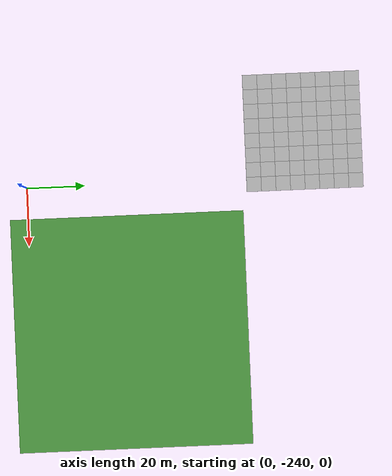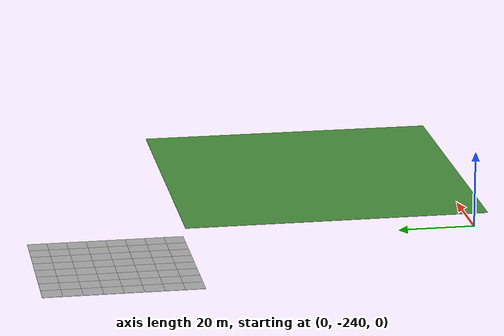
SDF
<sdf version="1.7">
 <world name="default">
  <model name="grass_plane_80x80_13">
   <pose>50.7386 -206.165 -0.05 0 -0 0</pose>
   <static>1</static>
   <link name="link">
    <collision name="collision"><geometry><box><size>80 80 0.1</size></box></geometry></collision>
    <visual name="grass">
     <cast_shadows>0</cast_shadows>
     <geometry><box><size>80 80 0.1</size></box></geometry>
     <material>
      <script><uri>file://media/materials/scripts/gazebo.material</uri><name>Gazebo/Grass</name></script>
     </material>
    </visual>
   </link>
  </model>
  <model name="mud_plane_40x40_9">
   <model name="mud_plane_20x20">
    <model name="mud_plane">
     <static>1</static>
     <link name="link">
      <collision name="collision"><geometry><box><size>10 10 0.1</size></box></geometry></collision>
      <visual name="visual_1">
       <pose>-2.5 2.5 -0.05 0 -0 0</pose>
       <cast_shadows>0</cast_shadows>
       <geometry><box><size>5 5 0.1</size></box></geometry>
       <material>
        <script>
         <uri>model://mud_plane/materials/scripts</uri>
         <uri>model://mud_plane/materials/textures</uri>
         <name>vrc/mud</name>
        </script>
       </material>
      </visual>
      <visual name="visual_2">
       <pose>2.5 2.5 -0.05 0 -0 0</pose>
       <cast_shadows>0</cast_shadows>
       <geometry><box><size>5 5 0.1</size></box></geometry>
       <material>
        <script>
         <uri>model://mud_plane/materials/scripts</uri>
         <uri>model://mud_plane/materials/textures</uri>
         <name>vrc/mud</name>
        </script>
       </material>
      </visual>
      <visual name="visual_3">
       <pose>2.5 -2.5 -0.05 0 -0 0</pose>
       <cast_shadows>0</cast_shadows>
       <geometry><box><size>5 5 0.1</size></box></geometry>
       <material>
        <script>
         <uri>model://mud_plane/materials/scripts</uri>
         <uri>model://mud_plane/materials/textures</uri>
         <name>vrc/mud</name>
        </script>
       </material>
      </visual>
      <visual name="visual_4">
       <pose>-2.5 -2.5 -0.05 0 -0 0</pose>
       <cast_shadows>0</cast_shadows>
       <geometry><box><size>5 5 0.1</size></box></geometry>
       <material>
        <script>
         <uri>model://mud_plane/materials/scripts</uri>
         <uri>model://mud_plane/materials/textures</uri>
         <name>vrc/mud</name>
        </script>
       </material>
      </visual>
     </link>
     <pose>-4.99986 -4.99991 0 0 -0 0</pose>
    </model>
    <model name="mud_plane_0">
     <static>1</static>
     <link name="link">
      <collision name="collision"><geometry><box><size>10 10 0.1</size></box></geometry></collision>
      <visual name="visual_1">
       <pose>-2.5 2.5 -0.05 0 -0 0</pose>
       <cast_shadows>0</cast_shadows>
       <geometry><box><size>5 5 0.1</size></box></geometry>
       <material>
        <script>
         <uri>model://mud_plane/materials/scripts</uri>
         <uri>model://mud_plane/materials/textures</uri>
         <name>vrc/mud</name>
        </script>
       </material>
      </visual>
      <visual name="visual_2">
       <pose>2.5 2.5 -0.05 0 -0 0</pose>
       <cast_shadows>0</cast_shadows>
       <geometry><box><size>5 5 0.1</size></box></geometry>
       <material>
        <script>
         <uri>model://mud_plane/materials/scripts</uri>
         <uri>model://mud_plane/materials/textures</uri>
         <name>vrc/mud</name>
        </script>
       </material>
      </visual>
      <visual name="visual_3">
       <pose>2.5 -2.5 -0.05 0 -0 0</pose>
       <cast_shadows>0</cast_shadows>
       <geometry><box><size>5 5 0.1</size></box></geometry>
       <material>
        <script>
         <uri>model://mud_plane/materials/scripts</uri>
         <uri>model://mud_plane/materials/textures</uri>
         <name>vrc/mud</name>
        </script>
       </material>
      </visual>
      <visual name="visual_4">
       <pose>-2.5 -2.5 -0.05 0 -0 0</pose>
       <cast_shadows>0</cast_shadows>
       <geometry><box><size>5 5 0.1</size></box></geometry>
       <material>
        <script>
         <uri>model://mud_plane/materials/scripts</uri>
         <uri>model://mud_plane/materials/textures</uri>
         <name>vrc/mud</name>
        </script>
       </material>
      </visual>
     </link>
     <pose>-4.99946 4.99954 0 0 -0 0</pose>
    </model>
    <model name="mud_plane_1">
     <static>1</static>
     <link name="link">
      <collision name="collision"><geometry><box><size>10 10 0.1</size></box></geometry></collision>
      <visual name="visual_1">
       <pose>-2.5 2.5 -0.05 0 -0 0</pose>
       <cast_shadows>0</cast_shadows>
       <geometry><box><size>5 5 0.1</size></box></geometry>
       <material>
        <script>
         <uri>model://mud_plane/materials/scripts</uri>
         <uri>model://mud_plane/materials/textures</uri>
         <name>vrc/mud</name>
        </script>
       </material>
      </visual>
      <visual name="visual_2">
       <pose>2.5 2.5 -0.05 0 -0 0</pose>
       <cast_shadows>0</cast_shadows>
       <geometry><box><size>5 5 0.1</size></box></geometry>
       <material>
        <script>
         <uri>model://mud_plane/materials/scripts</uri>
         <uri>model://mud_plane/materials/textures</uri>
         <name>vrc/mud</name>
        </script>
       </material>
      </visual>
      <visual name="visual_3">
       <pose>2.5 -2.5 -0.05 0 -0 0</pose>
       <cast_shadows>0</cast_shadows>
       <geometry><box><size>5 5 0.1</size></box></geometry>
       <material>
        <script>
         <uri>model://mud_plane/materials/scripts</uri>
         <uri>model://mud_plane/materials/textures</uri>
         <name>vrc/mud</name>
        </script>
       </material>
      </visual>
      <visual name="visual_4">
       <pose>-2.5 -2.5 -0.05 0 -0 0</pose>
       <cast_shadows>0</cast_shadows>
       <geometry><box><size>5 5 0.1</size></box></geometry>
       <material>
        <script>
         <uri>model://mud_plane/materials/scripts</uri>
         <uri>model://mud_plane/materials/textures</uri>
         <name>vrc/mud</name>
        </script>
       </material>
      </visual>
     </link>
     <pose>4.99964 -4.99949 0 0 -0 0</pose>
    </model>
    <model name="mud_plane_2">
     <static>1</static>
     <link name="link">
      <collision name="collision"><geometry><box><size>10 10 0.1</size></box></geometry></collision>
      <visual name="visual_1">
       <pose>-2.5 2.5 -0.05 0 -0 0</pose>
       <cast_shadows>0</cast_shadows>
       <geometry><box><size>5 5 0.1</size></box></geometry>
       <material>
        <script>
         <uri>model://mud_plane/materials/scripts</uri>
         <uri>model://mud_plane/materials/textures</uri>
         <name>vrc/mud</name>
        </script>
       </material>
      </visual>
      <visual name="visual_2">
       <pose>2.5 2.5 -0.05 0 -0 0</pose>
       <cast_shadows>0</cast_shadows>
       <geometry><box><size>5 5 0.1</size></box></geometry>
       <material>
        <script>
         <uri>model://mud_plane/materials/scripts</uri>
         <uri>model://mud_plane/materials/textures</uri>
         <name>vrc/mud</name>
        </script>
       </material>
      </visual>
      <visual name="visual_3">
       <pose>2.5 -2.5 -0.05 0 -0 0</pose>
       <cast_shadows>0</cast_shadows>
       <geometry><box><size>5 5 0.1</size></box></geometry>
       <material>
        <script>
         <uri>model://mud_plane/materials/scripts</uri>
         <uri>model://mud_plane/materials/textures</uri>
         <name>vrc/mud</name>
        </script>
       </material>
      </visual>
      <visual name="visual_4">
       <pose>-2.5 -2.5 -0.05 0 -0 0</pose>
       <cast_shadows>0</cast_shadows>
       <geometry><box><size>5 5 0.1</size></box></geometry>
       <material>
        <script>
         <uri>model://mud_plane/materials/scripts</uri>
         <uri>model://mud_plane/materials/textures</uri>
         <name>vrc/mud</name>
        </script>
       </material>
      </visual>
     </link>
     <pose>4.99967 4.99986 0 0 -0 0</pose>
    </model>
    <static>0</static>
    <pose>-9.99895 9.99843 0 0 -0 0</pose>
   </model>
   <model name="mud_plane_20x20_0">
    <model name="mud_plane">
     <static>1</static>
     <link name="link">
      <collision name="collision"><geometry><box><size>10 10 0.1</size></box></geometry></collision>
      <visual name="visual_1">
       <pose>-2.5 2.5 -0.05 0 -0 0</pose>
       <cast_shadows>0</cast_shadows>
       <geometry><box><size>5 5 0.1</size></box></geometry>
       <material>
        <script>
         <uri>model://mud_plane/materials/scripts</uri>
         <uri>model://mud_plane/materials/textures</uri>
         <name>vrc/mud</name>
        </script>
       </material>
      </visual>
      <visual name="visual_2">
       <pose>2.5 2.5 -0.05 0 -0 0</pose>
       <cast_shadows>0</cast_shadows>
       <geometry><box><size>5 5 0.1</size></box></geometry>
       <material>
        <script>
         <uri>model://mud_plane/materials/scripts</uri>
         <uri>model://mud_plane/materials/textures</uri>
         <name>vrc/mud</name>
        </script>
       </material>
      </visual>
      <visual name="visual_3">
       <pose>2.5 -2.5 -0.05 0 -0 0</pose>
       <cast_shadows>0</cast_shadows>
       <geometry><box><size>5 5 0.1</size></box></geometry>
       <material>
        <script>
         <uri>model://mud_plane/materials/scripts</uri>
         <uri>model://mud_plane/materials/textures</uri>
         <name>vrc/mud</name>
        </script>
       </material>
      </visual>
      <visual name="visual_4">
       <pose>-2.5 -2.5 -0.05 0 -0 0</pose>
       <cast_shadows>0</cast_shadows>
       <geometry><box><size>5 5 0.1</size></box></geometry>
       <material>
        <script>
         <uri>model://mud_plane/materials/scripts</uri>
         <uri>model://mud_plane/materials/textures</uri>
         <name>vrc/mud</name>
        </script>
       </material>
      </visual>
     </link>
     <pose>-4.99986 -4.99991 0 0 -0 0</pose>
    </model>
    <model name="mud_plane_0">
     <static>1</static>
     <link name="link">
      <collision name="collision"><geometry><box><size>10 10 0.1</size></box></geometry></collision>
      <visual name="visual_1">
       <pose>-2.5 2.5 -0.05 0 -0 0</pose>
       <cast_shadows>0</cast_shadows>
       <geometry><box><size>5 5 0.1</size></box></geometry>
       <material>
        <script>
         <uri>model://mud_plane/materials/scripts</uri>
         <uri>model://mud_plane/materials/textures</uri>
         <name>vrc/mud</name>
        </script>
       </material>
      </visual>
      <visual name="visual_2">
       <pose>2.5 2.5 -0.05 0 -0 0</pose>
       <cast_shadows>0</cast_shadows>
       <geometry><box><size>5 5 0.1</size></box></geometry>
       <material>
        <script>
         <uri>model://mud_plane/materials/scripts</uri>
         <uri>model://mud_plane/materials/textures</uri>
         <name>vrc/mud</name>
        </script>
       </material>
      </visual>
      <visual name="visual_3">
       <pose>2.5 -2.5 -0.05 0 -0 0</pose>
       <cast_shadows>0</cast_shadows>
       <geometry><box><size>5 5 0.1</size></box></geometry>
       <material>
        <script>
         <uri>model://mud_plane/materials/scripts</uri>
         <uri>model://mud_plane/materials/textures</uri>
         <name>vrc/mud</name>
        </script>
       </material>
      </visual>
      <visual name="visual_4">
       <pose>-2.5 -2.5 -0.05 0 -0 0</pose>
       <cast_shadows>0</cast_shadows>
       <geometry><box><size>5 5 0.1</size></box></geometry>
       <material>
        <script>
         <uri>model://mud_plane/materials/scripts</uri>
         <uri>model://mud_plane/materials/textures</uri>
         <name>vrc/mud</name>
        </script>
       </material>
      </visual>
     </link>
     <pose>-4.99946 4.99954 0 0 -0 0</pose>
    </model>
    <model name="mud_plane_1">
     <static>1</static>
     <link name="link">
      <collision name="collision"><geometry><box><size>10 10 0.1</size></box></geometry></collision>
      <visual name="visual_1">
       <pose>-2.5 2.5 -0.05 0 -0 0</pose>
       <cast_shadows>0</cast_shadows>
       <geometry><box><size>5 5 0.1</size></box></geometry>
       <material>
        <script>
         <uri>model://mud_plane/materials/scripts</uri>
         <uri>model://mud_plane/materials/textures</uri>
         <name>vrc/mud</name>
        </script>
       </material>
      </visual>
      <visual name="visual_2">
       <pose>2.5 2.5 -0.05 0 -0 0</pose>
       <cast_shadows>0</cast_shadows>
       <geometry><box><size>5 5 0.1</size></box></geometry>
       <material>
        <script>
         <uri>model://mud_plane/materials/scripts</uri>
         <uri>model://mud_plane/materials/textures</uri>
         <name>vrc/mud</name>
        </script>
       </material>
      </visual>
      <visual name="visual_3">
       <pose>2.5 -2.5 -0.05 0 -0 0</pose>
       <cast_shadows>0</cast_shadows>
       <geometry><box><size>5 5 0.1</size></box></geometry>
       <material>
        <script>
         <uri>model://mud_plane/materials/scripts</uri>
         <uri>model://mud_plane/materials/textures</uri>
         <name>vrc/mud</name>
        </script>
       </material>
      </visual>
      <visual name="visual_4">
       <pose>-2.5 -2.5 -0.05 0 -0 0</pose>
       <cast_shadows>0</cast_shadows>
       <geometry><box><size>5 5 0.1</size></box></geometry>
       <material>
        <script>
         <uri>model://mud_plane/materials/scripts</uri>
         <uri>model://mud_plane/materials/textures</uri>
         <name>vrc/mud</name>
        </script>
       </material>
      </visual>
     </link>
     <pose>4.99964 -4.99949 0 0 -0 0</pose>
    </model>
    <model name="mud_plane_2">
     <static>1</static>
     <link name="link">
      <collision name="collision"><geometry><box><size>10 10 0.1</size></box></geometry></collision>
      <visual name="visual_1">
       <pose>-2.5 2.5 -0.05 0 -0 0</pose>
       <cast_shadows>0</cast_shadows>
       <geometry><box><size>5 5 0.1</size></box></geometry>
       <material>
        <script>
         <uri>model://mud_plane/materials/scripts</uri>
         <uri>model://mud_plane/materials/textures</uri>
         <name>vrc/mud</name>
        </script>
       </material>
      </visual>
      <visual name="visual_2">
       <pose>2.5 2.5 -0.05 0 -0 0</pose>
       <cast_shadows>0</cast_shadows>
       <geometry><box><size>5 5 0.1</size></box></geometry>
       <material>
        <script>
         <uri>model://mud_plane/materials/scripts</uri>
         <uri>model://mud_plane/materials/textures</uri>
         <name>vrc/mud</name>
        </script>
       </material>
      </visual>
      <visual name="visual_3">
       <pose>2.5 -2.5 -0.05 0 -0 0</pose>
       <cast_shadows>0</cast_shadows>
       <geometry><box><size>5 5 0.1</size></box></geometry>
       <material>
        <script>
         <uri>model://mud_plane/materials/scripts</uri>
         <uri>model://mud_plane/materials/textures</uri>
         <name>vrc/mud</name>
        </script>
       </material>
      </visual>
      <visual name="visual_4">
       <pose>-2.5 -2.5 -0.05 0 -0 0</pose>
       <cast_shadows>0</cast_shadows>
       <geometry><box><size>5 5 0.1</size></box></geometry>
       <material>
        <script>
         <uri>model://mud_plane/materials/scripts</uri>
         <uri>model://mud_plane/materials/textures</uri>
         <name>vrc/mud</name>
        </script>
       </material>
      </visual>
     </link>
     <pose>4.99967 4.99986 0 0 -0 0</pose>
    </model>
    <static>0</static>
    <pose>9.99933 9.9997 0 0 -0 0</pose>
   </model>
   <model name="mud_plane_20x20_1">
    <model name="mud_plane">
     <static>1</static>
     <link name="link">
      <collision name="collision"><geometry><box><size>10 10 0.1</size></box></geometry></collision>
      <visual name="visual_1">
       <pose>-2.5 2.5 -0.05 0 -0 0</pose>
       <cast_shadows>0</cast_shadows>
       <geometry><box><size>5 5 0.1</size></box></geometry>
       <material>
        <script>
         <uri>model://mud_plane/materials/scripts</uri>
         <uri>model://mud_plane/materials/textures</uri>
         <name>vrc/mud</name>
        </script>
       </material>
      </visual>
      <visual name="visual_2">
       <pose>2.5 2.5 -0.05 0 -0 0</pose>
       <cast_shadows>0</cast_shadows>
       <geometry><box><size>5 5 0.1</size></box></geometry>
       <material>
        <script>
         <uri>model://mud_plane/materials/scripts</uri>
         <uri>model://mud_plane/materials/textures</uri>
         <name>vrc/mud</name>
        </script>
       </material>
      </visual>
      <visual name="visual_3">
       <pose>2.5 -2.5 -0.05 0 -0 0</pose>
       <cast_shadows>0</cast_shadows>
       <geometry><box><size>5 5 0.1</size></box></geometry>
       <material>
        <script>
         <uri>model://mud_plane/materials/scripts</uri>
         <uri>model://mud_plane/materials/textures</uri>
         <name>vrc/mud</name>
        </script>
       </material>
      </visual>
      <visual name="visual_4">
       <pose>-2.5 -2.5 -0.05 0 -0 0</pose>
       <cast_shadows>0</cast_shadows>
       <geometry><box><size>5 5 0.1</size></box></geometry>
       <material>
        <script>
         <uri>model://mud_plane/materials/scripts</uri>
         <uri>model://mud_plane/materials/textures</uri>
         <name>vrc/mud</name>
        </script>
       </material>
      </visual>
     </link>
     <pose>-4.99986 -4.99991 0 0 -0 0</pose>
    </model>
    <model name="mud_plane_0">
     <static>1</static>
     <link name="link">
      <collision name="collision"><geometry><box><size>10 10 0.1</size></box></geometry></collision>
      <visual name="visual_1">
       <pose>-2.5 2.5 -0.05 0 -0 0</pose>
       <cast_shadows>0</cast_shadows>
       <geometry><box><size>5 5 0.1</size></box></geometry>
       <material>
        <script>
         <uri>model://mud_plane/materials/scripts</uri>
         <uri>model://mud_plane/materials/textures</uri>
         <name>vrc/mud</name>
        </script>
       </material>
      </visual>
      <visual name="visual_2">
       <pose>2.5 2.5 -0.05 0 -0 0</pose>
       <cast_shadows>0</cast_shadows>
       <geometry><box><size>5 5 0.1</size></box></geometry>
       <material>
        <script>
         <uri>model://mud_plane/materials/scripts</uri>
         <uri>model://mud_plane/materials/textures</uri>
         <name>vrc/mud</name>
        </script>
       </material>
      </visual>
      <visual name="visual_3">
       <pose>2.5 -2.5 -0.05 0 -0 0</pose>
       <cast_shadows>0</cast_shadows>
       <geometry><box><size>5 5 0.1</size></box></geometry>
       <material>
        <script>
         <uri>model://mud_plane/materials/scripts</uri>
         <uri>model://mud_plane/materials/textures</uri>
         <name>vrc/mud</name>
        </script>
       </material>
      </visual>
      <visual name="visual_4">
       <pose>-2.5 -2.5 -0.05 0 -0 0</pose>
       <cast_shadows>0</cast_shadows>
       <geometry><box><size>5 5 0.1</size></box></geometry>
       <material>
        <script>
         <uri>model://mud_plane/materials/scripts</uri>
         <uri>model://mud_plane/materials/textures</uri>
         <name>vrc/mud</name>
        </script>
       </material>
      </visual>
     </link>
     <pose>-4.99946 4.99954 0 0 -0 0</pose>
    </model>
    <model name="mud_plane_1">
     <static>1</static>
     <link name="link">
      <collision name="collision"><geometry><box><size>10 10 0.1</size></box></geometry></collision>
      <visual name="visual_1">
       <pose>-2.5 2.5 -0.05 0 -0 0</pose>
       <cast_shadows>0</cast_shadows>
       <geometry><box><size>5 5 0.1</size></box></geometry>
       <material>
        <script>
         <uri>model://mud_plane/materials/scripts</uri>
         <uri>model://mud_plane/materials/textures</uri>
         <name>vrc/mud</name>
        </script>
       </material>
      </visual>
      <visual name="visual_2">
       <pose>2.5 2.5 -0.05 0 -0 0</pose>
       <cast_shadows>0</cast_shadows>
       <geometry><box><size>5 5 0.1</size></box></geometry>
       <material>
        <script>
         <uri>model://mud_plane/materials/scripts</uri>
         <uri>model://mud_plane/materials/textures</uri>
         <name>vrc/mud</name>
        </script>
       </material>
      </visual>
      <visual name="visual_3">
       <pose>2.5 -2.5 -0.05 0 -0 0</pose>
       <cast_shadows>0</cast_shadows>
       <geometry><box><size>5 5 0.1</size></box></geometry>
       <material>
        <script>
         <uri>model://mud_plane/materials/scripts</uri>
         <uri>model://mud_plane/materials/textures</uri>
         <name>vrc/mud</name>
        </script>
       </material>
      </visual>
      <visual name="visual_4">
       <pose>-2.5 -2.5 -0.05 0 -0 0</pose>
       <cast_shadows>0</cast_shadows>
       <geometry><box><size>5 5 0.1</size></box></geometry>
       <material>
        <script>
         <uri>model://mud_plane/materials/scripts</uri>
         <uri>model://mud_plane/materials/textures</uri>
         <name>vrc/mud</name>
        </script>
       </material>
      </visual>
     </link>
     <pose>4.99964 -4.99949 0 0 -0 0</pose>
    </model>
    <model name="mud_plane_2">
     <static>1</static>
     <link name="link">
      <collision name="collision"><geometry><box><size>10 10 0.1</size></box></geometry></collision>
      <visual name="visual_1">
       <pose>-2.5 2.5 -0.05 0 -0 0</pose>
       <cast_shadows>0</cast_shadows>
       <geometry><box><size>5 5 0.1</size></box></geometry>
       <material>
        <script>
         <uri>model://mud_plane/materials/scripts</uri>
         <uri>model://mud_plane/materials/textures</uri>
         <name>vrc/mud</name>
        </script>
       </material>
      </visual>
      <visual name="visual_2">
       <pose>2.5 2.5 -0.05 0 -0 0</pose>
       <cast_shadows>0</cast_shadows>
       <geometry><box><size>5 5 0.1</size></box></geometry>
       <material>
        <script>
         <uri>model://mud_plane/materials/scripts</uri>
         <uri>model://mud_plane/materials/textures</uri>
         <name>vrc/mud</name>
        </script>
       </material>
      </visual>
      <visual name="visual_3">
       <pose>2.5 -2.5 -0.05 0 -0 0</pose>
       <cast_shadows>0</cast_shadows>
       <geometry><box><size>5 5 0.1</size></box></geometry>
       <material>
        <script>
         <uri>model://mud_plane/materials/scripts</uri>
         <uri>model://mud_plane/materials/textures</uri>
         <name>vrc/mud</name>
        </script>
       </material>
      </visual>
      <visual name="visual_4">
       <pose>-2.5 -2.5 -0.05 0 -0 0</pose>
       <cast_shadows>0</cast_shadows>
       <geometry><box><size>5 5 0.1</size></box></geometry>
       <material>
        <script>
         <uri>model://mud_plane/materials/scripts</uri>
         <uri>model://mud_plane/materials/textures</uri>
         <name>vrc/mud</name>
        </script>
       </material>
      </visual>
     </link>
     <pose>4.99967 4.99986 0 0 -0 0</pose>
    </model>
    <static>0</static>
    <pose>9.9993 -9.99877 0 0 -0 0</pose>
   </model>
   <model name="mud_plane_20x20_2">
    <model name="mud_plane">
     <static>1</static>
     <link name="link">
      <collision name="collision"><geometry><box><size>10 10 0.1</size></box></geometry></collision>
      <visual name="visual_1">
       <pose>-2.5 2.5 -0.05 0 -0 0</pose>
       <cast_shadows>0</cast_shadows>
       <geometry><box><size>5 5 0.1</size></box></geometry>
       <material>
        <script>
         <uri>model://mud_plane/materials/scripts</uri>
         <uri>model://mud_plane/materials/textures</uri>
         <name>vrc/mud</name>
        </script>
       </material>
      </visual>
      <visual name="visual_2">
       <pose>2.5 2.5 -0.05 0 -0 0</pose>
       <cast_shadows>0</cast_shadows>
       <geometry><box><size>5 5 0.1</size></box></geometry>
       <material>
        <script>
         <uri>model://mud_plane/materials/scripts</uri>
         <uri>model://mud_plane/materials/textures</uri>
         <name>vrc/mud</name>
        </script>
       </material>
      </visual>
      <visual name="visual_3">
       <pose>2.5 -2.5 -0.05 0 -0 0</pose>
       <cast_shadows>0</cast_shadows>
       <geometry><box><size>5 5 0.1</size></box></geometry>
       <material>
        <script>
         <uri>model://mud_plane/materials/scripts</uri>
         <uri>model://mud_plane/materials/textures</uri>
         <name>vrc/mud</name>
        </script>
       </material>
      </visual>
      <visual name="visual_4">
       <pose>-2.5 -2.5 -0.05 0 -0 0</pose>
       <cast_shadows>0</cast_shadows>
       <geometry><box><size>5 5 0.1</size></box></geometry>
       <material>
        <script>
         <uri>model://mud_plane/materials/scripts</uri>
         <uri>model://mud_plane/materials/textures</uri>
         <name>vrc/mud</name>
        </script>
       </material>
      </visual>
     </link>
     <pose>-4.99986 -4.99991 0 0 -0 0</pose>
    </model>
    <model name="mud_plane_0">
     <static>1</static>
     <link name="link">
      <collision name="collision"><geometry><box><size>10 10 0.1</size></box></geometry></collision>
      <visual name="visual_1">
       <pose>-2.5 2.5 -0.05 0 -0 0</pose>
       <cast_shadows>0</cast_shadows>
       <geometry><box><size>5 5 0.1</size></box></geometry>
       <material>
        <script>
         <uri>model://mud_plane/materials/scripts</uri>
         <uri>model://mud_plane/materials/textures</uri>
         <name>vrc/mud</name>
        </script>
       </material>
      </visual>
      <visual name="visual_2">
       <pose>2.5 2.5 -0.05 0 -0 0</pose>
       <cast_shadows>0</cast_shadows>
       <geometry><box><size>5 5 0.1</size></box></geometry>
       <material>
        <script>
         <uri>model://mud_plane/materials/scripts</uri>
         <uri>model://mud_plane/materials/textures</uri>
         <name>vrc/mud</name>
        </script>
       </material>
      </visual>
      <visual name="visual_3">
       <pose>2.5 -2.5 -0.05 0 -0 0</pose>
       <cast_shadows>0</cast_shadows>
       <geometry><box><size>5 5 0.1</size></box></geometry>
       <material>
        <script>
         <uri>model://mud_plane/materials/scripts</uri>
         <uri>model://mud_plane/materials/textures</uri>
         <name>vrc/mud</name>
        </script>
       </material>
      </visual>
      <visual name="visual_4">
       <pose>-2.5 -2.5 -0.05 0 -0 0</pose>
       <cast_shadows>0</cast_shadows>
       <geometry><box><size>5 5 0.1</size></box></geometry>
       <material>
        <script>
         <uri>model://mud_plane/materials/scripts</uri>
         <uri>model://mud_plane/materials/textures</uri>
         <name>vrc/mud</name>
        </script>
       </material>
      </visual>
     </link>
     <pose>-4.99946 4.99954 0 0 -0 0</pose>
    </model>
    <model name="mud_plane_1">
     <static>1</static>
     <link name="link">
      <collision name="collision"><geometry><box><size>10 10 0.1</size></box></geometry></collision>
      <visual name="visual_1">
       <pose>-2.5 2.5 -0.05 0 -0 0</pose>
       <cast_shadows>0</cast_shadows>
       <geometry><box><size>5 5 0.1</size></box></geometry>
       <material>
        <script>
         <uri>model://mud_plane/materials/scripts</uri>
         <uri>model://mud_plane/materials/textures</uri>
         <name>vrc/mud</name>
        </script>
       </material>
      </visual>
      <visual name="visual_2">
       <pose>2.5 2.5 -0.05 0 -0 0</pose>
       <cast_shadows>0</cast_shadows>
       <geometry><box><size>5 5 0.1</size></box></geometry>
       <material>
        <script>
         <uri>model://mud_plane/materials/scripts</uri>
         <uri>model://mud_plane/materials/textures</uri>
         <name>vrc/mud</name>
        </script>
       </material>
      </visual>
      <visual name="visual_3">
       <pose>2.5 -2.5 -0.05 0 -0 0</pose>
       <cast_shadows>0</cast_shadows>
       <geometry><box><size>5 5 0.1</size></box></geometry>
       <material>
        <script>
         <uri>model://mud_plane/materials/scripts</uri>
         <uri>model://mud_plane/materials/textures</uri>
         <name>vrc/mud</name>
        </script>
       </material>
      </visual>
      <visual name="visual_4">
       <pose>-2.5 -2.5 -0.05 0 -0 0</pose>
       <cast_shadows>0</cast_shadows>
       <geometry><box><size>5 5 0.1</size></box></geometry>
       <material>
        <script>
         <uri>model://mud_plane/materials/scripts</uri>
         <uri>model://mud_plane/materials/textures</uri>
         <name>vrc/mud</name>
        </script>
       </material>
      </visual>
     </link>
     <pose>4.99964 -4.99949 0 0 -0 0</pose>
    </model>
    <model name="mud_plane_2">
     <static>1</static>
     <link name="link">
      <collision name="collision"><geometry><box><size>10 10 0.1</size></box></geometry></collision>
      <visual name="visual_1">
       <pose>-2.5 2.5 -0.05 0 -0 0</pose>
       <cast_shadows>0</cast_shadows>
       <geometry><box><size>5 5 0.1</size></box></geometry>
       <material>
        <script>
         <uri>model://mud_plane/materials/scripts</uri>
         <uri>model://mud_plane/materials/textures</uri>
         <name>vrc/mud</name>
        </script>
       </material>
      </visual>
      <visual name="visual_2">
       <pose>2.5 2.5 -0.05 0 -0 0</pose>
       <cast_shadows>0</cast_shadows>
       <geometry><box><size>5 5 0.1</size></box></geometry>
       <material>
        <script>
         <uri>model://mud_plane/materials/scripts</uri>
         <uri>model://mud_plane/materials/textures</uri>
         <name>vrc/mud</name>
        </script>
       </material>
      </visual>
      <visual name="visual_3">
       <pose>2.5 -2.5 -0.05 0 -0 0</pose>
       <cast_shadows>0</cast_shadows>
       <geometry><box><size>5 5 0.1</size></box></geometry>
       <material>
        <script>
         <uri>model://mud_plane/materials/scripts</uri>
         <uri>model://mud_plane/materials/textures</uri>
         <name>vrc/mud</name>
        </script>
       </material>
      </visual>
      <visual name="visual_4">
       <pose>-2.5 -2.5 -0.05 0 -0 0</pose>
       <cast_shadows>0</cast_shadows>
       <geometry><box><size>5 5 0.1</size></box></geometry>
       <material>
        <script>
         <uri>model://mud_plane/materials/scripts</uri>
         <uri>model://mud_plane/materials/textures</uri>
         <name>vrc/mud</name>
        </script>
       </material>
      </visual>
     </link>
     <pose>4.99967 4.99986 0 0 -0 0</pose>
    </model>
    <static>0</static>
    <pose>-9.99969 -9.99935 0 0 -0 0</pose>
   </model>
   <static>0</static>
   <pose>-15.5512 -144.66 0 0 -0 0</pose>
  </model>
 </world>
</sdf>
